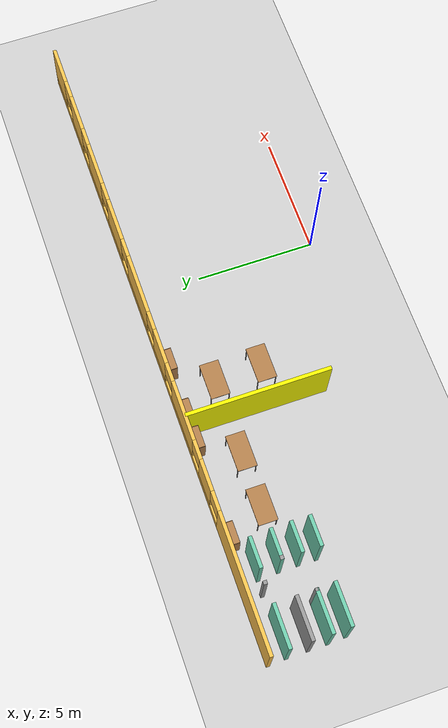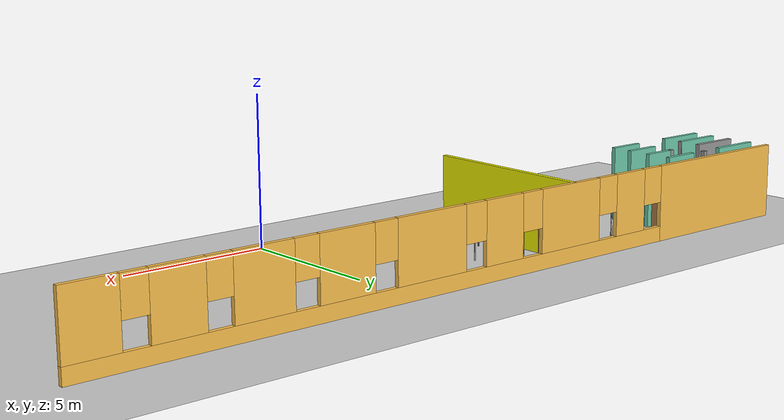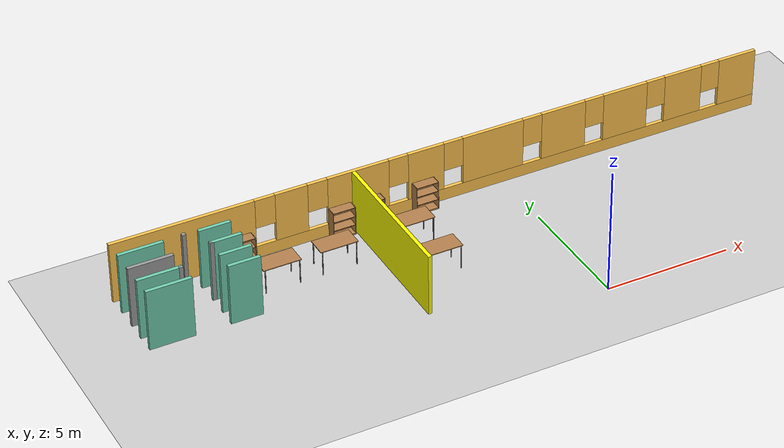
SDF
<sdf version="1.6">
 <world name="default">
  <model name="ground_plane">
   <static>1</static>
   <link name="link">
    <collision name="collision">
     <geometry><plane><normal>0 0 1</normal><size>100 100</size></plane></geometry>
     <surface><friction><ode><mu>100</mu><mu2>50</mu2></ode></friction></surface>
    </collision>
    <visual name="visual">
     <cast_shadows>0</cast_shadows>
     <geometry><plane><normal>0 0 1</normal><size>100 100</size></plane></geometry>
     <material>
      <script><uri>file://media/materials/scripts/gazebo.material</uri><name>Gazebo/Grey</name></script>
     </material>
    </visual>
   </link>
  </model>
  <model name="mybuilding">
   <pose>-2.36213 -0.825276 0 0 -0 0</pose>
   <link name="Wall_113">
    <collision name="Wall_113_Collision">
     <geometry><box><size>1.75 0.15 2.5</size></box></geometry>
     <pose>0 0 1.25 0 -0 0</pose>
    </collision>
    <visual name="Wall_113_Visual">
     <pose>0 0 1.25 0 -0 0</pose>
     <geometry><box><size>1.75 0.15 2.5</size></box></geometry>
     <material>
      <script><uri>file://media/materials/scripts/gazebo.material</uri><name>Gazebo/Grey</name></script>
      <ambient>0.435294 0.796078 0.67451 1</ambient>
     </material>
     <meta><layer>0</layer></meta>
    </visual>
    <pose>-12.5657 5.4207 0 0 -0 0</pose>
   </link>
   <link name="Wall_118">
    <collision name="Wall_118_Collision">
     <geometry><box><size>1.75 0.15 2.5</size></box></geometry>
     <pose>0 0 1.25 0 -0 0</pose>
    </collision>
    <visual name="Wall_118_Visual">
     <pose>0 0 1.25 0 -0 0</pose>
     <geometry><box><size>1.75 0.15 2.5</size></box></geometry>
     <material>
      <script><uri>file://media/materials/scripts/gazebo.material</uri><name>Gazebo/Grey</name></script>
      <ambient>1 1 1 1</ambient>
     </material>
     <meta><layer>0</layer></meta>
    </visual>
    <pose>-12.591 6.93726 0 0 -0 0</pose>
   </link>
   <link name="Wall_122">
    <collision name="Wall_122_Collision">
     <geometry><box><size>1.75 0.15 2.5</size></box></geometry>
     <pose>0 0 1.25 0 -0 0</pose>
    </collision>
    <visual name="Wall_122_Visual">
     <pose>0 0 1.25 0 -0 0</pose>
     <geometry><box><size>1.75 0.15 2.5</size></box></geometry>
     <material>
      <script><uri>file://media/materials/scripts/gazebo.material</uri><name>Gazebo/Grey</name></script>
      <ambient>0.435294 0.796078 0.67451 1</ambient>
     </material>
     <meta><layer>0</layer></meta>
    </visual>
    <pose>-12.591 7.81489 0 0 -0 0</pose>
   </link>
   <link name="Wall_124">
    <collision name="Wall_124_Collision">
     <geometry><box><size>1.75 0.15 2.5</size></box></geometry>
     <pose>0 0 1.25 0 -0 0</pose>
    </collision>
    <visual name="Wall_124_Visual">
     <pose>0 0 1.25 0 -0 0</pose>
     <geometry><box><size>1.75 0.15 2.5</size></box></geometry>
     <material>
      <script><uri>file://media/materials/scripts/gazebo.material</uri><name>Gazebo/Grey</name></script>
      <ambient>0.435294 0.796078 0.67451 1</ambient>
     </material>
     <meta><layer>0</layer></meta>
    </visual>
    <pose>-12.591 6.15451 0 0 -0 0</pose>
   </link>
   <link name="Wall_125">
    <collision name="Wall_125_Collision">
     <geometry><box><size>0.16 0.15 2.5</size></box></geometry>
     <pose>0 0 1.25 0 -0 0</pose>
    </collision>
    <visual name="Wall_125_Visual">
     <pose>0 0 1.25 0 -0 0</pose>
     <geometry><box><size>0.16 0.15 2.5</size></box></geometry>
     <material>
      <script><uri>file://media/materials/scripts/gazebo.material</uri><name>Gazebo/Grey</name></script>
      <ambient>0 0 0 0</ambient>
     </material>
     <meta><layer>0</layer></meta>
    </visual>
    <pose>-11.786 6.15451 0 0 -0 0</pose>
   </link>
   <link name="Wall_128">
    <collision name="Wall_128_Collision">
     <geometry><box><size>1.25 0.15 2.5</size></box></geometry>
     <pose>0 0 1.25 0 -0 0</pose>
    </collision>
    <visual name="Wall_128_Visual">
     <pose>0 0 1.25 0 -0 0</pose>
     <geometry><box><size>1.25 0.15 2.5</size></box></geometry>
     <material>
      <script><uri>file://media/materials/scripts/gazebo.material</uri><name>Gazebo/Grey</name></script>
      <ambient>0.435294 0.796078 0.67451 1</ambient>
     </material>
     <meta><layer>0</layer></meta>
    </visual>
    <pose>-9.76007 7.80847 0 0 -0 3.14159</pose>
   </link>
   <link name="Wall_130">
    <collision name="Wall_130_Collision">
     <geometry><box><size>1.25 0.15 2.5</size></box></geometry>
     <pose>0 0 1.25 0 -0 0</pose>
    </collision>
    <visual name="Wall_130_Visual">
     <pose>0 0 1.25 0 -0 0</pose>
     <geometry><box><size>1.25 0.15 2.5</size></box></geometry>
     <material>
      <script><uri>file://media/materials/scripts/gazebo.material</uri><name>Gazebo/Grey</name></script>
      <ambient>0.435294 0.796078 0.67451 1</ambient>
     </material>
     <meta><layer>0</layer></meta>
    </visual>
    <pose>-9.71164 6.96281 0 0 -0 3.14159</pose>
   </link>
   <link name="Wall_131">
    <collision name="Wall_131_Collision">
     <geometry><box><size>0.16 0.15 2.5</size></box></geometry>
     <pose>0 0 1.25 0 -0 0</pose>
    </collision>
    <visual name="Wall_131_Visual">
     <pose>0 0 1.25 0 -0 0</pose>
     <geometry><box><size>0.16 0.15 2.5</size></box></geometry>
     <material>
      <script><uri>file://media/materials/scripts/gazebo.material</uri><name>Gazebo/Grey</name></script>
      <ambient>0 0 0 0</ambient>
     </material>
     <meta><layer>0</layer></meta>
    </visual>
    <pose>-10.2566 6.96281 0 0 -0 0</pose>
   </link>
   <link name="Wall_132">
    <collision name="Wall_132_Collision">
     <geometry><box><size>1.25 0.15 2.5</size></box></geometry>
     <pose>0 0 1.25 0 -0 0</pose>
    </collision>
    <visual name="Wall_132_Visual">
     <pose>0 0 1.25 0 -0 0</pose>
     <geometry><box><size>1.25 0.15 2.5</size></box></geometry>
     <material>
      <script><uri>file://media/materials/scripts/gazebo.material</uri><name>Gazebo/Grey</name></script>
      <ambient>0.435294 0.796078 0.67451 1</ambient>
     </material>
     <meta><layer>0</layer></meta>
    </visual>
    <pose>-9.70141 6.15841 0 0 -0 3.14159</pose>
   </link>
   <link name="Wall_134">
    <collision name="Wall_134_Collision">
     <geometry><box><size>1.25 0.15 2.5</size></box></geometry>
     <pose>0 0 1.25 0 -0 0</pose>
    </collision>
    <visual name="Wall_134_Visual">
     <pose>0 0 1.25 0 -0 0</pose>
     <geometry><box><size>1.25 0.15 2.5</size></box></geometry>
     <material>
      <script><uri>file://media/materials/scripts/gazebo.material</uri><name>Gazebo/Grey</name></script>
      <ambient>0.435294 0.796078 0.67451 1</ambient>
     </material>
     <meta><layer>0</layer></meta>
    </visual>
    <pose>-9.7135 5.41701 0 0 -0 3.14159</pose>
   </link>
   <link name="Wall_151">
    <collision name="Wall_151_Collision">
     <geometry><box><size>6 0.15 2.5</size></box></geometry>
     <pose>0 0 1.25 0 -0 0</pose>
    </collision>
    <visual name="Wall_151_Visual">
     <pose>0 0 1.25 0 -0 0</pose>
     <geometry><box><size>6 0.15 2.5</size></box></geometry>
     <material>
      <script><uri>file://media/materials/scripts/gazebo.material</uri><name>Gazebo/Grey</name></script>
      <ambient>1 1 0 1</ambient>
     </material>
     <meta><layer>0</layer></meta>
    </visual>
    <pose>-3.91292 5.55304 0 0 0 -1.5708</pose>
   </link>
   <link name="Wall_185">
    <collision name="Wall_185_Collision">
     <geometry><box><size>0.15 0.15 2.5</size></box></geometry>
     <pose>0 0 1.25 0 -0 0</pose>
    </collision>
    <visual name="Wall_185_Visual">
     <pose>0 0 1.25 0 -0 0</pose>
     <geometry><box><size>0.15 0.15 2.5</size></box></geometry>
     <material>
      <script><uri>file://media/materials/scripts/gazebo.material</uri><name>Gazebo/Grey</name></script>
      <ambient>1 1 1 1</ambient>
     </material>
     <meta><layer>0</layer></meta>
    </visual>
    <pose>-10.9249 7.85699 0 0 -0 0</pose>
   </link>
   <link name="Wall_90">
    <pose>0 8.55 0 0 -0 0</pose>
    <visual name="Wall_90_Visual_0">
     <pose>-10.6849 0 1.25 0 -0 0</pose>
     <geometry><box><size>5.63012 0.15 2.5</size></box></geometry>
     <material>
      <script><uri>file://media/materials/scripts/gazebo.material</uri><name>Gazebo/Grey</name></script>
      <ambient>1 0.764706 0.305882 1</ambient>
     </material>
     <meta><layer>0</layer></meta>
    </visual>
    <collision name="Wall_90_Collision_0">
     <geometry><box><size>5.63012 0.15 2.5</size></box></geometry>
     <pose>-10.6849 0 1.25 0 -0 0</pose>
    </collision>
    <visual name="Wall_90_Visual_1">
     <pose>2.81506 0 0.25 0 -0 0</pose>
     <geometry><box><size>21.3699 0.15 0.5</size></box></geometry>
     <material>
      <script><uri>file://media/materials/scripts/gazebo.material</uri><name>Gazebo/Grey</name></script>
      <ambient>1 0.764706 0.305882 1</ambient>
     </material>
     <meta><layer>0</layer></meta>
    </visual>
    <collision name="Wall_90_Collision_1">
     <geometry><box><size>21.3699 0.15 0.5</size></box></geometry>
     <pose>2.81506 0 0.25 0 -0 0</pose>
    </collision>
    <visual name="Wall_90_Visual_2">
     <pose>-6.41969 0 1.5 0 -0 0</pose>
     <geometry><box><size>1.30037 0.15 2</size></box></geometry>
     <material>
      <script><uri>file://media/materials/scripts/gazebo.material</uri><name>Gazebo/Grey</name></script>
      <ambient>1 0.764706 0.305882 1</ambient>
     </material>
     <meta><layer>0</layer></meta>
    </visual>
    <collision name="Wall_90_Collision_2">
     <geometry><box><size>1.30037 0.15 2</size></box></geometry>
     <pose>-6.41969 0 1.5 0 -0 0</pose>
    </collision>
    <visual name="Wall_90_Visual_3">
     <pose>-3.71922 0 1.5 0 -0 0</pose>
     <geometry><box><size>2.50059 0.15 2</size></box></geometry>
     <material>
      <script><uri>file://media/materials/scripts/gazebo.material</uri><name>Gazebo/Grey</name></script>
      <ambient>1 0.764706 0.305882 1</ambient>
     </material>
     <meta><layer>0</layer></meta>
    </visual>
    <collision name="Wall_90_Collision_3">
     <geometry><box><size>2.50059 0.15 2</size></box></geometry>
     <pose>-3.71922 0 1.5 0 -0 0</pose>
    </collision>
    <visual name="Wall_90_Visual_4">
     <pose>-0.923265 0 1.5 0 -0 0</pose>
     <geometry><box><size>1.49131 0.15 2</size></box></geometry>
     <material>
      <script><uri>file://media/materials/scripts/gazebo.material</uri><name>Gazebo/Grey</name></script>
      <ambient>1 0.764706 0.305882 1</ambient>
     </material>
     <meta><layer>0</layer></meta>
    </visual>
    <collision name="Wall_90_Collision_4">
     <geometry><box><size>1.49131 0.15 2</size></box></geometry>
     <pose>-0.923265 0 1.5 0 -0 0</pose>
    </collision>
    <visual name="Wall_90_Visual_5">
     <pose>1.90157 0 1.5 0 -0 0</pose>
     <geometry><box><size>2.55835 0.15 2</size></box></geometry>
     <material>
      <script><uri>file://media/materials/scripts/gazebo.material</uri><name>Gazebo/Grey</name></script>
      <ambient>1 0.764706 0.305882 1</ambient>
     </material>
     <meta><layer>0</layer></meta>
    </visual>
    <collision name="Wall_90_Collision_5">
     <geometry><box><size>2.55835 0.15 2</size></box></geometry>
     <pose>1.90157 0 1.5 0 -0 0</pose>
    </collision>
    <visual name="Wall_90_Visual_6">
     <pose>4.92912 0 1.5 0 -0 0</pose>
     <geometry><box><size>1.89675 0.15 2</size></box></geometry>
     <material>
      <script><uri>file://media/materials/scripts/gazebo.material</uri><name>Gazebo/Grey</name></script>
      <ambient>1 0.764706 0.305882 1</ambient>
     </material>
     <meta><layer>0</layer></meta>
    </visual>
    <collision name="Wall_90_Collision_6">
     <geometry><box><size>1.89675 0.15 2</size></box></geometry>
     <pose>4.92912 0 1.5 0 -0 0</pose>
    </collision>
    <visual name="Wall_90_Visual_7">
     <pose>7.64173 0 1.5 0 -0 0</pose>
     <geometry><box><size>1.92848 0.15 2</size></box></geometry>
     <material>
      <script><uri>file://media/materials/scripts/gazebo.material</uri><name>Gazebo/Grey</name></script>
      <ambient>1 0.764706 0.305882 1</ambient>
     </material>
     <meta><layer>0</layer></meta>
    </visual>
    <collision name="Wall_90_Collision_7">
     <geometry><box><size>1.92848 0.15 2</size></box></geometry>
     <pose>7.64173 0 1.5 0 -0 0</pose>
    </collision>
    <visual name="Wall_90_Visual_8">
     <pose>10.2274 0 1.5 0 -0 0</pose>
     <geometry><box><size>1.64294 0.15 2</size></box></geometry>
     <material>
      <script><uri>file://media/materials/scripts/gazebo.material</uri><name>Gazebo/Grey</name></script>
      <ambient>1 0.764706 0.305882 1</ambient>
     </material>
     <meta><layer>0</layer></meta>
    </visual>
    <collision name="Wall_90_Collision_8">
     <geometry><box><size>1.64294 0.15 2</size></box></geometry>
     <pose>10.2274 0 1.5 0 -0 0</pose>
    </collision>
    <visual name="Wall_90_Visual_9">
     <pose>12.6745 0 1.5 0 -0 0</pose>
     <geometry><box><size>1.65109 0.15 2</size></box></geometry>
     <material>
      <script><uri>file://media/materials/scripts/gazebo.material</uri><name>Gazebo/Grey</name></script>
      <ambient>1 0.764706 0.305882 1</ambient>
     </material>
     <meta><layer>0</layer></meta>
    </visual>
    <collision name="Wall_90_Collision_9">
     <geometry><box><size>1.65109 0.15 2</size></box></geometry>
     <pose>12.6745 0 1.5 0 -0 0</pose>
    </collision>
    <visual name="Wall_90_Visual_10">
     <pose>-7.46988 0 1.9 0 -0 0</pose>
     <geometry><box><size>0.8 0.15 1.2</size></box></geometry>
     <material>
      <script><uri>file://media/materials/scripts/gazebo.material</uri><name>Gazebo/Grey</name></script>
      <ambient>1 0.764706 0.305882 1</ambient>
     </material>
     <meta><layer>0</layer></meta>
    </visual>
    <collision name="Wall_90_Collision_10">
     <geometry><box><size>0.8 0.15 1.2</size></box></geometry>
     <pose>-7.46988 0 1.9 0 -0 0</pose>
    </collision>
    <visual name="Wall_90_Visual_11">
     <pose>-5.36951 0 1.9 0 -0 0</pose>
     <geometry><box><size>0.8 0.15 1.2</size></box></geometry>
     <material>
      <script><uri>file://media/materials/scripts/gazebo.material</uri><name>Gazebo/Grey</name></script>
      <ambient>1 0.764706 0.305882 1</ambient>
     </material>
     <meta><layer>0</layer></meta>
    </visual>
    <collision name="Wall_90_Collision_11">
     <geometry><box><size>0.8 0.15 1.2</size></box></geometry>
     <pose>-5.36951 0 1.9 0 -0 0</pose>
    </collision>
    <visual name="Wall_90_Visual_12">
     <pose>-2.06892 0 1.9 0 -0 0</pose>
     <geometry><box><size>0.8 0.15 1.2</size></box></geometry>
     <material>
      <script><uri>file://media/materials/scripts/gazebo.material</uri><name>Gazebo/Grey</name></script>
      <ambient>1 0.764706 0.305882 1</ambient>
     </material>
     <meta><layer>0</layer></meta>
    </visual>
    <collision name="Wall_90_Collision_12">
     <geometry><box><size>0.8 0.15 1.2</size></box></geometry>
     <pose>-2.06892 0 1.9 0 -0 0</pose>
    </collision>
    <visual name="Wall_90_Visual_13">
     <pose>0.222393 0 1.9 0 -0 0</pose>
     <geometry><box><size>0.8 0.15 1.2</size></box></geometry>
     <material>
      <script><uri>file://media/materials/scripts/gazebo.material</uri><name>Gazebo/Grey</name></script>
      <ambient>1 0.764706 0.305882 1</ambient>
     </material>
     <meta><layer>0</layer></meta>
    </visual>
    <collision name="Wall_90_Collision_13">
     <geometry><box><size>0.8 0.15 1.2</size></box></geometry>
     <pose>0.222393 0 1.9 0 -0 0</pose>
    </collision>
    <visual name="Wall_90_Visual_14">
     <pose>3.58074 0 1.9 0 -0 0</pose>
     <geometry><box><size>0.8 0.15 1.2</size></box></geometry>
     <material>
      <script><uri>file://media/materials/scripts/gazebo.material</uri><name>Gazebo/Grey</name></script>
      <ambient>1 0.764706 0.305882 1</ambient>
     </material>
     <meta><layer>0</layer></meta>
    </visual>
    <collision name="Wall_90_Collision_14">
     <geometry><box><size>0.8 0.15 1.2</size></box></geometry>
     <pose>3.58074 0 1.9 0 -0 0</pose>
    </collision>
    <visual name="Wall_90_Visual_15">
     <pose>6.27749 0 1.9 0 -0 0</pose>
     <geometry><box><size>0.8 0.15 1.2</size></box></geometry>
     <material>
      <script><uri>file://media/materials/scripts/gazebo.material</uri><name>Gazebo/Grey</name></script>
      <ambient>1 0.764706 0.305882 1</ambient>
     </material>
     <meta><layer>0</layer></meta>
    </visual>
    <collision name="Wall_90_Collision_15">
     <geometry><box><size>0.8 0.15 1.2</size></box></geometry>
     <pose>6.27749 0 1.9 0 -0 0</pose>
    </collision>
    <visual name="Wall_90_Visual_16">
     <pose>9.00597 0 1.9 0 -0 0</pose>
     <geometry><box><size>0.8 0.15 1.2</size></box></geometry>
     <material>
      <script><uri>file://media/materials/scripts/gazebo.material</uri><name>Gazebo/Grey</name></script>
      <ambient>1 0.764706 0.305882 1</ambient>
     </material>
     <meta><layer>0</layer></meta>
    </visual>
    <collision name="Wall_90_Collision_16">
     <geometry><box><size>0.8 0.15 1.2</size></box></geometry>
     <pose>9.00597 0 1.9 0 -0 0</pose>
    </collision>
    <visual name="Wall_90_Visual_17">
     <pose>11.4489 0 1.9 0 -0 0</pose>
     <geometry><box><size>0.8 0.15 1.2</size></box></geometry>
     <material>
      <script><uri>file://media/materials/scripts/gazebo.material</uri><name>Gazebo/Grey</name></script>
      <ambient>1 0.764706 0.305882 1</ambient>
     </material>
     <meta><layer>0</layer></meta>
    </visual>
    <collision name="Wall_90_Collision_17">
     <geometry><box><size>0.8 0.15 1.2</size></box></geometry>
     <pose>11.4489 0 1.9 0 -0 0</pose>
    </collision>
   </link>
   <static>1</static>
  </model>
  <model name="bookshelf">
   <static>1</static>
   <link name="link">
    <inertial><mass>1</mass></inertial>
    <collision name="back">
     <pose>0 0.005 0.6 0 -0 0</pose>
     <geometry><box><size>0.9 0.01 1.2</size></box></geometry>
    </collision>
    <visual name="visual1">
     <pose>0 0.005 0.6 0 -0 0</pose>
     <geometry><box><size>0.9 0.01 1.2</size></box></geometry>
     <material>
      <script><uri>file://media/materials/scripts/gazebo.material</uri><name>Gazebo/Wood</name></script>
     </material>
    </visual>
    <collision name="left_side">
     <pose>0.45 -0.195 0.6 0 -0 0</pose>
     <geometry><box><size>0.02 0.4 1.2</size></box></geometry>
    </collision>
    <visual name="visual2">
     <pose>0.45 -0.195 0.6 0 -0 0</pose>
     <geometry><box><size>0.02 0.4 1.2</size></box></geometry>
     <material>
      <script><uri>file://media/materials/scripts/gazebo.material</uri><name>Gazebo/Wood</name></script>
     </material>
    </visual>
    <collision name="right_side">
     <pose>-0.45 -0.195 0.6 0 -0 0</pose>
     <geometry><box><size>0.02 0.4 1.2</size></box></geometry>
    </collision>
    <visual name="visual3">
     <pose>-0.45 -0.195 0.6 0 -0 0</pose>
     <geometry><box><size>0.02 0.4 1.2</size></box></geometry>
     <material>
      <script><uri>file://media/materials/scripts/gazebo.material</uri><name>Gazebo/Wood</name></script>
     </material>
    </visual>
    <collision name="bottom">
     <pose>0 -0.195 0.03 0 -0 0</pose>
     <geometry><box><size>0.88 0.4 0.06</size></box></geometry>
    </collision>
    <visual name="visual4">
     <pose>0 -0.195 0.03 0 -0 0</pose>
     <geometry><box><size>0.88 0.4 0.06</size></box></geometry>
     <material>
      <script><uri>file://media/materials/scripts/gazebo.material</uri><name>Gazebo/Wood</name></script>
     </material>
    </visual>
    <collision name="top">
     <pose>0 -0.195 1.19 0 -0 0</pose>
     <geometry><box><size>0.88 0.4 0.02</size></box></geometry>
    </collision>
    <visual name="visual5">
     <pose>0 -0.195 1.19 0 -0 0</pose>
     <geometry><box><size>0.88 0.4 0.02</size></box></geometry>
     <material>
      <script><uri>file://media/materials/scripts/gazebo.material</uri><name>Gazebo/Wood</name></script>
     </material>
    </visual>
    <collision name="low_shelf">
     <pose>0 -0.195 0.43 0 -0 0</pose>
     <geometry><box><size>0.88 0.4 0.02</size></box></geometry>
    </collision>
    <visual name="visual6">
     <pose>0 -0.195 0.43 0 -0 0</pose>
     <geometry><box><size>0.88 0.4 0.02</size></box></geometry>
     <material>
      <script><uri>file://media/materials/scripts/gazebo.material</uri><name>Gazebo/Wood</name></script>
     </material>
    </visual>
    <collision name="high_shelf">
     <pose>0 -0.195 0.8 0 -0 0</pose>
     <geometry><box><size>0.88 0.4 0.02</size></box></geometry>
    </collision>
    <visual name="visual7">
     <pose>0 -0.195 0.8 0 -0 0</pose>
     <geometry><box><size>0.88 0.4 0.02</size></box></geometry>
     <material>
      <script><uri>file://media/materials/scripts/gazebo.material</uri><name>Gazebo/Wood</name></script>
     </material>
    </visual>
   </link>
   <pose>-3.44803 7.62732 0 0 -0 0</pose>
  </model>
  <model name="bookshelf_1">
   <static>1</static>
   <link name="link">
    <inertial><mass>1</mass></inertial>
    <collision name="back">
     <pose>0 0.005 0.6 0 -0 0</pose>
     <geometry><box><size>0.9 0.01 1.2</size></box></geometry>
    </collision>
    <visual name="visual1">
     <pose>0 0.005 0.6 0 -0 0</pose>
     <geometry><box><size>0.9 0.01 1.2</size></box></geometry>
     <material>
      <script><uri>file://media/materials/scripts/gazebo.material</uri><name>Gazebo/Wood</name></script>
     </material>
    </visual>
    <collision name="left_side">
     <pose>0.45 -0.195 0.6 0 -0 0</pose>
     <geometry><box><size>0.02 0.4 1.2</size></box></geometry>
    </collision>
    <visual name="visual2">
     <pose>0.45 -0.195 0.6 0 -0 0</pose>
     <geometry><box><size>0.02 0.4 1.2</size></box></geometry>
     <material>
      <script><uri>file://media/materials/scripts/gazebo.material</uri><name>Gazebo/Wood</name></script>
     </material>
    </visual>
    <collision name="right_side">
     <pose>-0.45 -0.195 0.6 0 -0 0</pose>
     <geometry><box><size>0.02 0.4 1.2</size></box></geometry>
    </collision>
    <visual name="visual3">
     <pose>-0.45 -0.195 0.6 0 -0 0</pose>
     <geometry><box><size>0.02 0.4 1.2</size></box></geometry>
     <material>
      <script><uri>file://media/materials/scripts/gazebo.material</uri><name>Gazebo/Wood</name></script>
     </material>
    </visual>
    <collision name="bottom">
     <pose>0 -0.195 0.03 0 -0 0</pose>
     <geometry><box><size>0.88 0.4 0.06</size></box></geometry>
    </collision>
    <visual name="visual4">
     <pose>0 -0.195 0.03 0 -0 0</pose>
     <geometry><box><size>0.88 0.4 0.06</size></box></geometry>
     <material>
      <script><uri>file://media/materials/scripts/gazebo.material</uri><name>Gazebo/Wood</name></script>
     </material>
    </visual>
    <collision name="top">
     <pose>0 -0.195 1.19 0 -0 0</pose>
     <geometry><box><size>0.88 0.4 0.02</size></box></geometry>
    </collision>
    <visual name="visual5">
     <pose>0 -0.195 1.19 0 -0 0</pose>
     <geometry><box><size>0.88 0.4 0.02</size></box></geometry>
     <material>
      <script><uri>file://media/materials/scripts/gazebo.material</uri><name>Gazebo/Wood</name></script>
     </material>
    </visual>
    <collision name="low_shelf">
     <pose>0 -0.195 0.43 0 -0 0</pose>
     <geometry><box><size>0.88 0.4 0.02</size></box></geometry>
    </collision>
    <visual name="visual6">
     <pose>0 -0.195 0.43 0 -0 0</pose>
     <geometry><box><size>0.88 0.4 0.02</size></box></geometry>
     <material>
      <script><uri>file://media/materials/scripts/gazebo.material</uri><name>Gazebo/Wood</name></script>
     </material>
    </visual>
    <collision name="high_shelf">
     <pose>0 -0.195 0.8 0 -0 0</pose>
     <geometry><box><size>0.88 0.4 0.02</size></box></geometry>
    </collision>
    <visual name="visual7">
     <pose>0 -0.195 0.8 0 -0 0</pose>
     <geometry><box><size>0.88 0.4 0.02</size></box></geometry>
     <material>
      <script><uri>file://media/materials/scripts/gazebo.material</uri><name>Gazebo/Wood</name></script>
     </material>
    </visual>
   </link>
   <pose>-5.67577 7.6331 0 0 -0 0</pose>
  </model>
  <model name="bookshelf_2">
   <static>1</static>
   <link name="link">
    <inertial><mass>1</mass></inertial>
    <collision name="back">
     <pose>0 0.005 0.6 0 -0 0</pose>
     <geometry><box><size>0.9 0.01 1.2</size></box></geometry>
    </collision>
    <visual name="visual1">
     <pose>0 0.005 0.6 0 -0 0</pose>
     <geometry><box><size>0.9 0.01 1.2</size></box></geometry>
     <material>
      <script><uri>file://media/materials/scripts/gazebo.material</uri><name>Gazebo/Wood</name></script>
     </material>
    </visual>
    <collision name="left_side">
     <pose>0.45 -0.195 0.6 0 -0 0</pose>
     <geometry><box><size>0.02 0.4 1.2</size></box></geometry>
    </collision>
    <visual name="visual2">
     <pose>0.45 -0.195 0.6 0 -0 0</pose>
     <geometry><box><size>0.02 0.4 1.2</size></box></geometry>
     <material>
      <script><uri>file://media/materials/scripts/gazebo.material</uri><name>Gazebo/Wood</name></script>
     </material>
    </visual>
    <collision name="right_side">
     <pose>-0.45 -0.195 0.6 0 -0 0</pose>
     <geometry><box><size>0.02 0.4 1.2</size></box></geometry>
    </collision>
    <visual name="visual3">
     <pose>-0.45 -0.195 0.6 0 -0 0</pose>
     <geometry><box><size>0.02 0.4 1.2</size></box></geometry>
     <material>
      <script><uri>file://media/materials/scripts/gazebo.material</uri><name>Gazebo/Wood</name></script>
     </material>
    </visual>
    <collision name="bottom">
     <pose>0 -0.195 0.03 0 -0 0</pose>
     <geometry><box><size>0.88 0.4 0.06</size></box></geometry>
    </collision>
    <visual name="visual4">
     <pose>0 -0.195 0.03 0 -0 0</pose>
     <geometry><box><size>0.88 0.4 0.06</size></box></geometry>
     <material>
      <script><uri>file://media/materials/scripts/gazebo.material</uri><name>Gazebo/Wood</name></script>
     </material>
    </visual>
    <collision name="top">
     <pose>0 -0.195 1.19 0 -0 0</pose>
     <geometry><box><size>0.88 0.4 0.02</size></box></geometry>
    </collision>
    <visual name="visual5">
     <pose>0 -0.195 1.19 0 -0 0</pose>
     <geometry><box><size>0.88 0.4 0.02</size></box></geometry>
     <material>
      <script><uri>file://media/materials/scripts/gazebo.material</uri><name>Gazebo/Wood</name></script>
     </material>
    </visual>
    <collision name="low_shelf">
     <pose>0 -0.195 0.43 0 -0 0</pose>
     <geometry><box><size>0.88 0.4 0.02</size></box></geometry>
    </collision>
    <visual name="visual6">
     <pose>0 -0.195 0.43 0 -0 0</pose>
     <geometry><box><size>0.88 0.4 0.02</size></box></geometry>
     <material>
      <script><uri>file://media/materials/scripts/gazebo.material</uri><name>Gazebo/Wood</name></script>
     </material>
    </visual>
    <collision name="high_shelf">
     <pose>0 -0.195 0.8 0 -0 0</pose>
     <geometry><box><size>0.88 0.4 0.02</size></box></geometry>
    </collision>
    <visual name="visual7">
     <pose>0 -0.195 0.8 0 -0 0</pose>
     <geometry><box><size>0.88 0.4 0.02</size></box></geometry>
     <material>
      <script><uri>file://media/materials/scripts/gazebo.material</uri><name>Gazebo/Wood</name></script>
     </material>
    </visual>
   </link>
   <pose>-10.8899 7.6416 0 0 -0 0</pose>
  </model>
  <model name="bookshelf_3">
   <static>1</static>
   <link name="link">
    <inertial><mass>1</mass></inertial>
    <collision name="back">
     <pose>0 0.005 0.6 0 -0 0</pose>
     <geometry><box><size>0.9 0.01 1.2</size></box></geometry>
    </collision>
    <visual name="visual1">
     <pose>0 0.005 0.6 0 -0 0</pose>
     <geometry><box><size>0.9 0.01 1.2</size></box></geometry>
     <material>
      <script><uri>file://media/materials/scripts/gazebo.material</uri><name>Gazebo/Wood</name></script>
     </material>
    </visual>
    <collision name="left_side">
     <pose>0.45 -0.195 0.6 0 -0 0</pose>
     <geometry><box><size>0.02 0.4 1.2</size></box></geometry>
    </collision>
    <visual name="visual2">
     <pose>0.45 -0.195 0.6 0 -0 0</pose>
     <geometry><box><size>0.02 0.4 1.2</size></box></geometry>
     <material>
      <script><uri>file://media/materials/scripts/gazebo.material</uri><name>Gazebo/Wood</name></script>
     </material>
    </visual>
    <collision name="right_side">
     <pose>-0.45 -0.195 0.6 0 -0 0</pose>
     <geometry><box><size>0.02 0.4 1.2</size></box></geometry>
    </collision>
    <visual name="visual3">
     <pose>-0.45 -0.195 0.6 0 -0 0</pose>
     <geometry><box><size>0.02 0.4 1.2</size></box></geometry>
     <material>
      <script><uri>file://media/materials/scripts/gazebo.material</uri><name>Gazebo/Wood</name></script>
     </material>
    </visual>
    <collision name="bottom">
     <pose>0 -0.195 0.03 0 -0 0</pose>
     <geometry><box><size>0.88 0.4 0.06</size></box></geometry>
    </collision>
    <visual name="visual4">
     <pose>0 -0.195 0.03 0 -0 0</pose>
     <geometry><box><size>0.88 0.4 0.06</size></box></geometry>
     <material>
      <script><uri>file://media/materials/scripts/gazebo.material</uri><name>Gazebo/Wood</name></script>
     </material>
    </visual>
    <collision name="top">
     <pose>0 -0.195 1.19 0 -0 0</pose>
     <geometry><box><size>0.88 0.4 0.02</size></box></geometry>
    </collision>
    <visual name="visual5">
     <pose>0 -0.195 1.19 0 -0 0</pose>
     <geometry><box><size>0.88 0.4 0.02</size></box></geometry>
     <material>
      <script><uri>file://media/materials/scripts/gazebo.material</uri><name>Gazebo/Wood</name></script>
     </material>
    </visual>
    <collision name="low_shelf">
     <pose>0 -0.195 0.43 0 -0 0</pose>
     <geometry><box><size>0.88 0.4 0.02</size></box></geometry>
    </collision>
    <visual name="visual6">
     <pose>0 -0.195 0.43 0 -0 0</pose>
     <geometry><box><size>0.88 0.4 0.02</size></box></geometry>
     <material>
      <script><uri>file://media/materials/scripts/gazebo.material</uri><name>Gazebo/Wood</name></script>
     </material>
    </visual>
    <collision name="high_shelf">
     <pose>0 -0.195 0.8 0 -0 0</pose>
     <geometry><box><size>0.88 0.4 0.02</size></box></geometry>
    </collision>
    <visual name="visual7">
     <pose>0 -0.195 0.8 0 -0 0</pose>
     <geometry><box><size>0.88 0.4 0.02</size></box></geometry>
     <material>
      <script><uri>file://media/materials/scripts/gazebo.material</uri><name>Gazebo/Wood</name></script>
     </material>
    </visual>
   </link>
   <pose>-6.87395 7.64071 0 0 -0 0</pose>
  </model>
  <model name="table">
   <static>1</static>
   <link name="link">
    <collision name="surface">
     <pose>0 0 1 0 -0 0</pose>
     <geometry><box><size>1.5 0.8 0.03</size></box></geometry>
     <surface><friction><ode><mu>0.6</mu><mu2>0.6</mu2></ode></friction></surface>
    </collision>
    <visual name="visual1">
     <pose>0 0 1 0 -0 0</pose>
     <geometry><box><size>1.5 0.8 0.03</size></box></geometry>
     <material>
      <script><uri>file://media/materials/scripts/gazebo.material</uri><name>Gazebo/Wood</name></script>
     </material>
    </visual>
    <collision name="front_left_leg">
     <pose>0.68 0.38 0.5 0 -0 0</pose>
     <geometry><cylinder><radius>0.02</radius><length>1</length></cylinder></geometry>
    </collision>
    <visual name="front_left_leg">
     <pose>0.68 0.38 0.5 0 -0 0</pose>
     <geometry><cylinder><radius>0.02</radius><length>1</length></cylinder></geometry>
     <material>
      <script><uri>file://media/materials/scripts/gazebo.material</uri><name>Gazebo/Grey</name></script>
     </material>
    </visual>
    <collision name="front_right_leg">
     <pose>0.68 -0.38 0.5 0 -0 0</pose>
     <geometry><cylinder><radius>0.02</radius><length>1</length></cylinder></geometry>
    </collision>
    <visual name="front_right_leg">
     <pose>0.68 -0.38 0.5 0 -0 0</pose>
     <geometry><cylinder><radius>0.02</radius><length>1</length></cylinder></geometry>
     <material>
      <script><uri>file://media/materials/scripts/gazebo.material</uri><name>Gazebo/Grey</name></script>
     </material>
    </visual>
    <collision name="back_right_leg">
     <pose>-0.68 -0.38 0.5 0 -0 0</pose>
     <geometry><cylinder><radius>0.02</radius><length>1</length></cylinder></geometry>
    </collision>
    <visual name="back_right_leg">
     <pose>-0.68 -0.38 0.5 0 -0 0</pose>
     <geometry><cylinder><radius>0.02</radius><length>1</length></cylinder></geometry>
     <material>
      <script><uri>file://media/materials/scripts/gazebo.material</uri><name>Gazebo/Grey</name></script>
     </material>
    </visual>
    <collision name="back_left_leg">
     <pose>-0.68 0.38 0.5 0 -0 0</pose>
     <geometry><cylinder><radius>0.02</radius><length>1</length></cylinder></geometry>
    </collision>
    <visual name="back_left_leg">
     <pose>-0.68 0.38 0.5 0 -0 0</pose>
     <geometry><cylinder><radius>0.02</radius><length>1</length></cylinder></geometry>
     <material>
      <script><uri>file://media/materials/scripts/gazebo.material</uri><name>Gazebo/Grey</name></script>
     </material>
    </visual>
   </link>
   <pose>-7.90562 5.97239 0 0 -0 0</pose>
  </model>
  <model name="table_2">
   <static>1</static>
   <link name="link">
    <collision name="surface">
     <pose>0 0 1 0 -0 0</pose>
     <geometry><box><size>1.5 0.8 0.03</size></box></geometry>
     <surface><friction><ode><mu>0.6</mu><mu2>0.6</mu2></ode></friction></surface>
    </collision>
    <visual name="visual1">
     <pose>0 0 1 0 -0 0</pose>
     <geometry><box><size>1.5 0.8 0.03</size></box></geometry>
     <material>
      <script><uri>file://media/materials/scripts/gazebo.material</uri><name>Gazebo/Wood</name></script>
     </material>
    </visual>
    <collision name="front_left_leg">
     <pose>0.68 0.38 0.5 0 -0 0</pose>
     <geometry><cylinder><radius>0.02</radius><length>1</length></cylinder></geometry>
    </collision>
    <visual name="front_left_leg">
     <pose>0.68 0.38 0.5 0 -0 0</pose>
     <geometry><cylinder><radius>0.02</radius><length>1</length></cylinder></geometry>
     <material>
      <script><uri>file://media/materials/scripts/gazebo.material</uri><name>Gazebo/Grey</name></script>
     </material>
    </visual>
    <collision name="front_right_leg">
     <pose>0.68 -0.38 0.5 0 -0 0</pose>
     <geometry><cylinder><radius>0.02</radius><length>1</length></cylinder></geometry>
    </collision>
    <visual name="front_right_leg">
     <pose>0.68 -0.38 0.5 0 -0 0</pose>
     <geometry><cylinder><radius>0.02</radius><length>1</length></cylinder></geometry>
     <material>
      <script><uri>file://media/materials/scripts/gazebo.material</uri><name>Gazebo/Grey</name></script>
     </material>
    </visual>
    <collision name="back_right_leg">
     <pose>-0.68 -0.38 0.5 0 -0 0</pose>
     <geometry><cylinder><radius>0.02</radius><length>1</length></cylinder></geometry>
    </collision>
    <visual name="back_right_leg">
     <pose>-0.68 -0.38 0.5 0 -0 0</pose>
     <geometry><cylinder><radius>0.02</radius><length>1</length></cylinder></geometry>
     <material>
      <script><uri>file://media/materials/scripts/gazebo.material</uri><name>Gazebo/Grey</name></script>
     </material>
    </visual>
    <collision name="back_left_leg">
     <pose>-0.68 0.38 0.5 0 -0 0</pose>
     <geometry><cylinder><radius>0.02</radius><length>1</length></cylinder></geometry>
    </collision>
    <visual name="back_left_leg">
     <pose>-0.68 0.38 0.5 0 -0 0</pose>
     <geometry><cylinder><radius>0.02</radius><length>1</length></cylinder></geometry>
     <material>
      <script><uri>file://media/materials/scripts/gazebo.material</uri><name>Gazebo/Grey</name></script>
     </material>
    </visual>
   </link>
   <pose>-10.1805 5.95 0 0 -0 0</pose>
  </model>
  <model name="table_3">
   <static>1</static>
   <link name="link">
    <collision name="surface">
     <pose>0 0 1 0 -0 0</pose>
     <geometry><box><size>1.5 0.8 0.03</size></box></geometry>
     <surface><friction><ode><mu>0.6</mu><mu2>0.6</mu2></ode></friction></surface>
    </collision>
    <visual name="visual1">
     <pose>0 0 1 0 -0 0</pose>
     <geometry><box><size>1.5 0.8 0.03</size></box></geometry>
     <material>
      <script><uri>file://media/materials/scripts/gazebo.material</uri><name>Gazebo/Wood</name></script>
     </material>
    </visual>
    <collision name="front_left_leg">
     <pose>0.68 0.38 0.5 0 -0 0</pose>
     <geometry><cylinder><radius>0.02</radius><length>1</length></cylinder></geometry>
    </collision>
    <visual name="front_left_leg">
     <pose>0.68 0.38 0.5 0 -0 0</pose>
     <geometry><cylinder><radius>0.02</radius><length>1</length></cylinder></geometry>
     <material>
      <script><uri>file://media/materials/scripts/gazebo.material</uri><name>Gazebo/Grey</name></script>
     </material>
    </visual>
    <collision name="front_right_leg">
     <pose>0.68 -0.38 0.5 0 -0 0</pose>
     <geometry><cylinder><radius>0.02</radius><length>1</length></cylinder></geometry>
    </collision>
    <visual name="front_right_leg">
     <pose>0.68 -0.38 0.5 0 -0 0</pose>
     <geometry><cylinder><radius>0.02</radius><length>1</length></cylinder></geometry>
     <material>
      <script><uri>file://media/materials/scripts/gazebo.material</uri><name>Gazebo/Grey</name></script>
     </material>
    </visual>
    <collision name="back_right_leg">
     <pose>-0.68 -0.38 0.5 0 -0 0</pose>
     <geometry><cylinder><radius>0.02</radius><length>1</length></cylinder></geometry>
    </collision>
    <visual name="back_right_leg">
     <pose>-0.68 -0.38 0.5 0 -0 0</pose>
     <geometry><cylinder><radius>0.02</radius><length>1</length></cylinder></geometry>
     <material>
      <script><uri>file://media/materials/scripts/gazebo.material</uri><name>Gazebo/Grey</name></script>
     </material>
    </visual>
    <collision name="back_left_leg">
     <pose>-0.68 0.38 0.5 0 -0 0</pose>
     <geometry><cylinder><radius>0.02</radius><length>1</length></cylinder></geometry>
    </collision>
    <visual name="back_left_leg">
     <pose>-0.68 0.38 0.5 0 -0 0</pose>
     <geometry><cylinder><radius>0.02</radius><length>1</length></cylinder></geometry>
     <material>
      <script><uri>file://media/materials/scripts/gazebo.material</uri><name>Gazebo/Grey</name></script>
     </material>
    </visual>
   </link>
   <pose>-4.77162 5.9737 0 0 -0 0</pose>
  </model>
  <model name="table_6">
   <static>1</static>
   <link name="link">
    <collision name="surface">
     <pose>0 0 1 0 -0 0</pose>
     <geometry><box><size>1.5 0.8 0.03</size></box></geometry>
     <surface><friction><ode><mu>0.6</mu><mu2>0.6</mu2></ode></friction></surface>
    </collision>
    <visual name="visual1">
     <pose>0 0 1 0 -0 0</pose>
     <geometry><box><size>1.5 0.8 0.03</size></box></geometry>
     <material>
      <script><uri>file://media/materials/scripts/gazebo.material</uri><name>Gazebo/Wood</name></script>
     </material>
    </visual>
    <collision name="front_left_leg">
     <pose>0.68 0.38 0.5 0 -0 0</pose>
     <geometry><cylinder><radius>0.02</radius><length>1</length></cylinder></geometry>
    </collision>
    <visual name="front_left_leg">
     <pose>0.68 0.38 0.5 0 -0 0</pose>
     <geometry><cylinder><radius>0.02</radius><length>1</length></cylinder></geometry>
     <material>
      <script><uri>file://media/materials/scripts/gazebo.material</uri><name>Gazebo/Grey</name></script>
     </material>
    </visual>
    <collision name="front_right_leg">
     <pose>0.68 -0.38 0.5 0 -0 0</pose>
     <geometry><cylinder><radius>0.02</radius><length>1</length></cylinder></geometry>
    </collision>
    <visual name="front_right_leg">
     <pose>0.68 -0.38 0.5 0 -0 0</pose>
     <geometry><cylinder><radius>0.02</radius><length>1</length></cylinder></geometry>
     <material>
      <script><uri>file://media/materials/scripts/gazebo.material</uri><name>Gazebo/Grey</name></script>
     </material>
    </visual>
    <collision name="back_right_leg">
     <pose>-0.68 -0.38 0.5 0 -0 0</pose>
     <geometry><cylinder><radius>0.02</radius><length>1</length></cylinder></geometry>
    </collision>
    <visual name="back_right_leg">
     <pose>-0.68 -0.38 0.5 0 -0 0</pose>
     <geometry><cylinder><radius>0.02</radius><length>1</length></cylinder></geometry>
     <material>
      <script><uri>file://media/materials/scripts/gazebo.material</uri><name>Gazebo/Grey</name></script>
     </material>
    </visual>
    <collision name="back_left_leg">
     <pose>-0.68 0.38 0.5 0 -0 0</pose>
     <geometry><cylinder><radius>0.02</radius><length>1</length></cylinder></geometry>
    </collision>
    <visual name="back_left_leg">
     <pose>-0.68 0.38 0.5 0 -0 0</pose>
     <geometry><cylinder><radius>0.02</radius><length>1</length></cylinder></geometry>
     <material>
      <script><uri>file://media/materials/scripts/gazebo.material</uri><name>Gazebo/Grey</name></script>
     </material>
    </visual>
   </link>
   <pose>-4.70418 3.97536 0 0 -0 0</pose>
  </model>
 </world>
</sdf>
